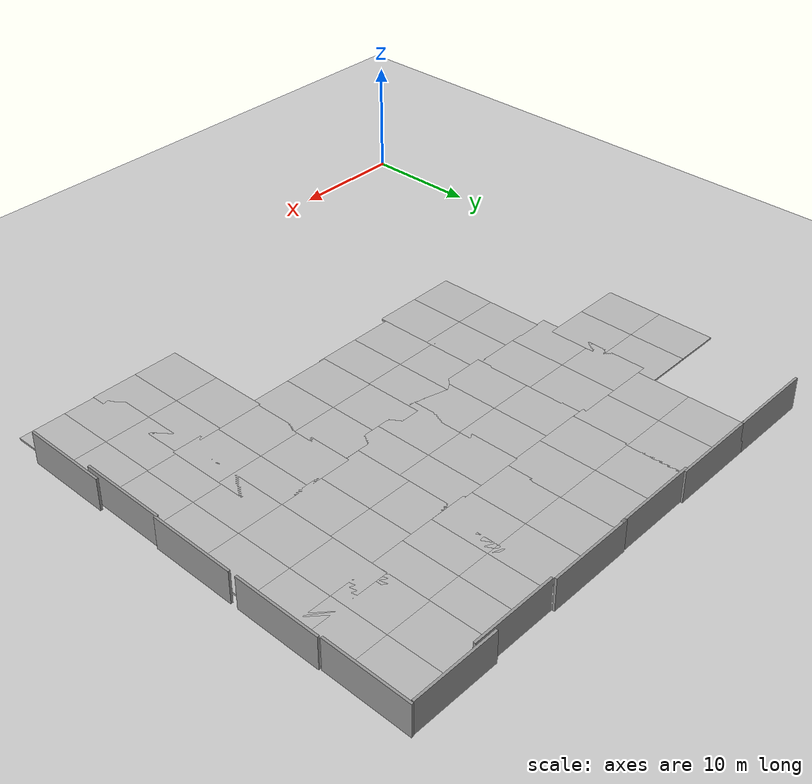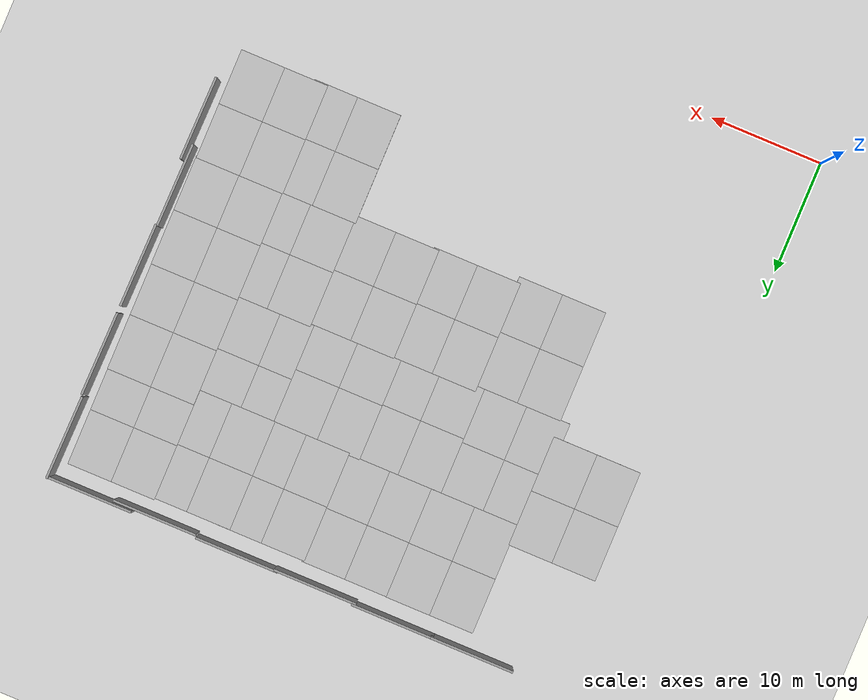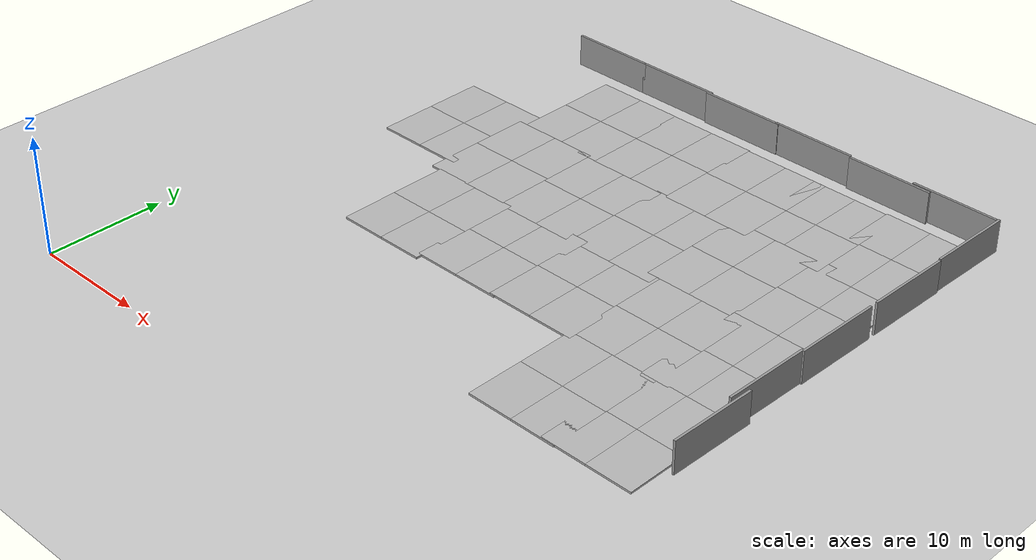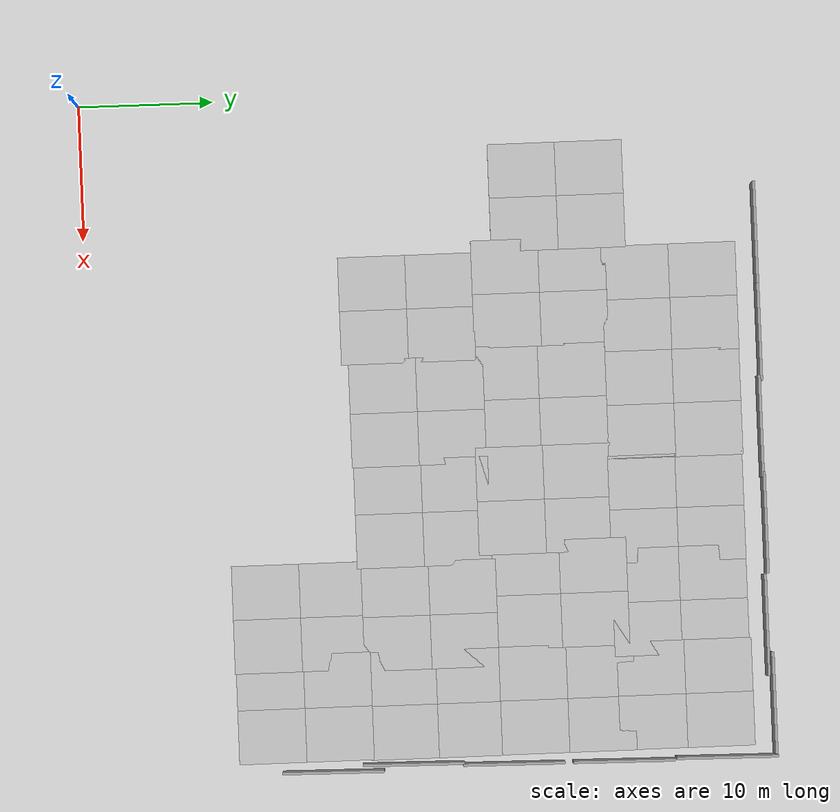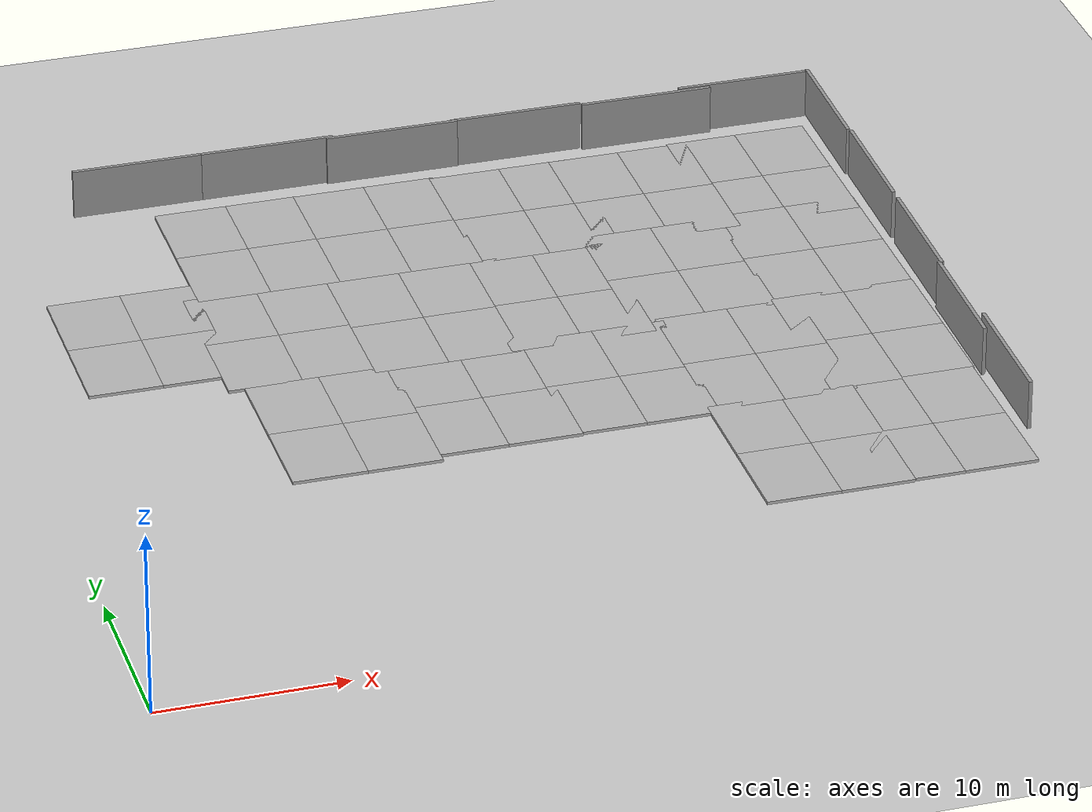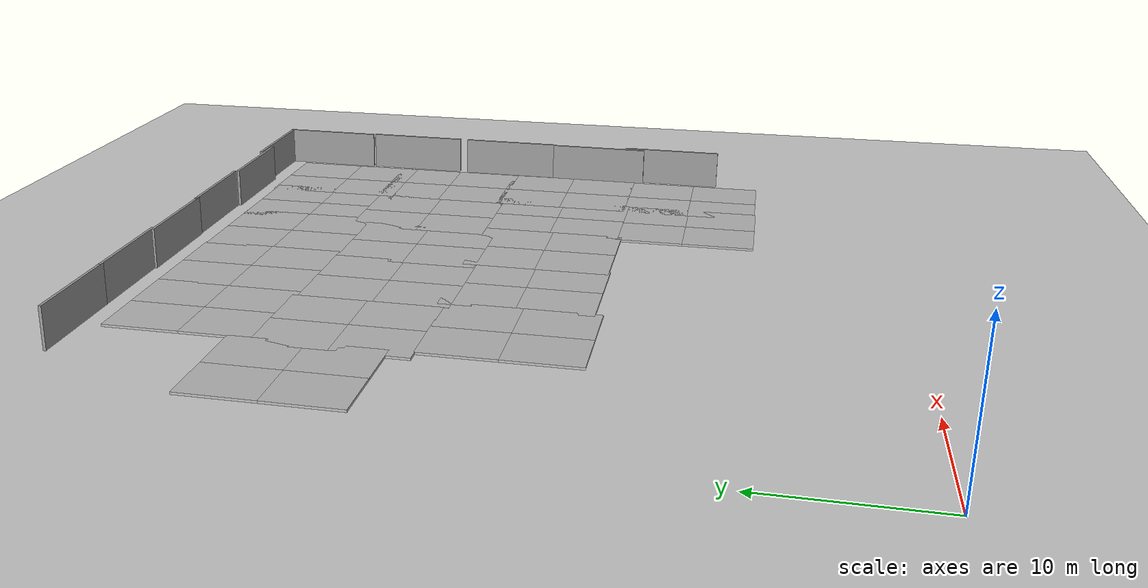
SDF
<sdf version="1.6">
 <world name="default">
  <model name="mud_box_clone_7">
   <static>1</static>
   <link name="link">
    <collision name="collision"><geometry><box><size>8 10 0.2</size></box></geometry></collision>
    <visual name="visual_1">
     <pose>-2 2.5 0 0 -0 0</pose>
     <cast_shadows>0</cast_shadows>
     <geometry><box><size>4 5 0.2</size></box></geometry>
     <material>
      <script>
       <uri>model://mud_box/materials/scripts</uri>
       <uri>model://mud_box/materials/textures</uri>
       <name>vrc/mud</name>
      </script>
     </material>
    </visual>
    <visual name="visual_2">
     <pose>2 2.5 0 0 -0 0</pose>
     <cast_shadows>0</cast_shadows>
     <geometry><box><size>4 5 0.2</size></box></geometry>
     <material>
      <script>
       <uri>model://mud_box/materials/scripts</uri>
       <uri>model://mud_box/materials/textures</uri>
       <name>vrc/mud</name>
      </script>
     </material>
    </visual>
    <visual name="visual_3">
     <pose>2 -2.5 0 0 -0 0</pose>
     <cast_shadows>0</cast_shadows>
     <geometry><box><size>4 5 0.2</size></box></geometry>
     <material>
      <script>
       <uri>model://mud_box/materials/scripts</uri>
       <uri>model://mud_box/materials/textures</uri>
       <name>vrc/mud</name>
      </script>
     </material>
    </visual>
    <visual name="visual_4">
     <pose>-2 -2.5 0 0 -0 0</pose>
     <cast_shadows>0</cast_shadows>
     <geometry><box><size>4 5 0.2</size></box></geometry>
     <material>
      <script>
       <uri>model://mud_box/materials/scripts</uri>
       <uri>model://mud_box/materials/textures</uri>
       <name>vrc/mud</name>
      </script>
     </material>
    </visual>
   </link>
   <pose>45.2942 15.1476 0 0 -0 0</pose>
  </model>
  <model name="mud_box_clone_8">
   <static>1</static>
   <link name="link">
    <collision name="collision"><geometry><box><size>8 10 0.2</size></box></geometry></collision>
    <visual name="visual_1">
     <pose>-2 2.5 0 0 -0 0</pose>
     <cast_shadows>0</cast_shadows>
     <geometry><box><size>4 5 0.2</size></box></geometry>
     <material>
      <script>
       <uri>model://mud_box/materials/scripts</uri>
       <uri>model://mud_box/materials/textures</uri>
       <name>vrc/mud</name>
      </script>
     </material>
    </visual>
    <visual name="visual_2">
     <pose>2 2.5 0 0 -0 0</pose>
     <cast_shadows>0</cast_shadows>
     <geometry><box><size>4 5 0.2</size></box></geometry>
     <material>
      <script>
       <uri>model://mud_box/materials/scripts</uri>
       <uri>model://mud_box/materials/textures</uri>
       <name>vrc/mud</name>
      </script>
     </material>
    </visual>
    <visual name="visual_3">
     <pose>2 -2.5 0 0 -0 0</pose>
     <cast_shadows>0</cast_shadows>
     <geometry><box><size>4 5 0.2</size></box></geometry>
     <material>
      <script>
       <uri>model://mud_box/materials/scripts</uri>
       <uri>model://mud_box/materials/textures</uri>
       <name>vrc/mud</name>
      </script>
     </material>
    </visual>
    <visual name="visual_4">
     <pose>-2 -2.5 0 0 -0 0</pose>
     <cast_shadows>0</cast_shadows>
     <geometry><box><size>4 5 0.2</size></box></geometry>
     <material>
      <script>
       <uri>model://mud_box/materials/scripts</uri>
       <uri>model://mud_box/materials/textures</uri>
       <name>vrc/mud</name>
      </script>
     </material>
    </visual>
   </link>
   <pose>38.5803 15.0753 0 0 -0 0</pose>
  </model>
  <model name="mud_box_clone_13">
   <static>1</static>
   <link name="link">
    <collision name="collision"><geometry><box><size>8 10 0.2</size></box></geometry></collision>
    <visual name="visual_1">
     <pose>-2 2.5 0 0 -0 0</pose>
     <cast_shadows>0</cast_shadows>
     <geometry><box><size>4 5 0.2</size></box></geometry>
     <material>
      <script>
       <uri>model://mud_box/materials/scripts</uri>
       <uri>model://mud_box/materials/textures</uri>
       <name>vrc/mud</name>
      </script>
     </material>
    </visual>
    <visual name="visual_2">
     <pose>2 2.5 0 0 -0 0</pose>
     <cast_shadows>0</cast_shadows>
     <geometry><box><size>4 5 0.2</size></box></geometry>
     <material>
      <script>
       <uri>model://mud_box/materials/scripts</uri>
       <uri>model://mud_box/materials/textures</uri>
       <name>vrc/mud</name>
      </script>
     </material>
    </visual>
    <visual name="visual_3">
     <pose>2 -2.5 0 0 -0 0</pose>
     <cast_shadows>0</cast_shadows>
     <geometry><box><size>4 5 0.2</size></box></geometry>
     <material>
      <script>
       <uri>model://mud_box/materials/scripts</uri>
       <uri>model://mud_box/materials/textures</uri>
       <name>vrc/mud</name>
      </script>
     </material>
    </visual>
    <visual name="visual_4">
     <pose>-2 -2.5 0 0 -0 0</pose>
     <cast_shadows>0</cast_shadows>
     <geometry><box><size>4 5 0.2</size></box></geometry>
     <material>
      <script>
       <uri>model://mud_box/materials/scripts</uri>
       <uri>model://mud_box/materials/textures</uri>
       <name>vrc/mud</name>
      </script>
     </material>
    </visual>
   </link>
   <pose>45.3466 24.9799 0 0 -0 0</pose>
  </model>
  <model name="mud_box_clone_14">
   <static>1</static>
   <link name="link">
    <collision name="collision"><geometry><box><size>8 10 0.2</size></box></geometry></collision>
    <visual name="visual_1">
     <pose>-2 2.5 0 0 -0 0</pose>
     <cast_shadows>0</cast_shadows>
     <geometry><box><size>4 5 0.2</size></box></geometry>
     <material>
      <script>
       <uri>model://mud_box/materials/scripts</uri>
       <uri>model://mud_box/materials/textures</uri>
       <name>vrc/mud</name>
      </script>
     </material>
    </visual>
    <visual name="visual_2">
     <pose>2 2.5 0 0 -0 0</pose>
     <cast_shadows>0</cast_shadows>
     <geometry><box><size>4 5 0.2</size></box></geometry>
     <material>
      <script>
       <uri>model://mud_box/materials/scripts</uri>
       <uri>model://mud_box/materials/textures</uri>
       <name>vrc/mud</name>
      </script>
     </material>
    </visual>
    <visual name="visual_3">
     <pose>2 -2.5 0 0 -0 0</pose>
     <cast_shadows>0</cast_shadows>
     <geometry><box><size>4 5 0.2</size></box></geometry>
     <material>
      <script>
       <uri>model://mud_box/materials/scripts</uri>
       <uri>model://mud_box/materials/textures</uri>
       <name>vrc/mud</name>
      </script>
     </material>
    </visual>
    <visual name="visual_4">
     <pose>-2 -2.5 0 0 -0 0</pose>
     <cast_shadows>0</cast_shadows>
     <geometry><box><size>4 5 0.2</size></box></geometry>
     <material>
      <script>
       <uri>model://mud_box/materials/scripts</uri>
       <uri>model://mud_box/materials/textures</uri>
       <name>vrc/mud</name>
      </script>
     </material>
    </visual>
   </link>
   <pose>38.7408 24.6872 0 0 -0 0</pose>
  </model>
  <model name="mud_box_clone_15">
   <static>1</static>
   <link name="link">
    <collision name="collision"><geometry><box><size>8 10 0.2</size></box></geometry></collision>
    <visual name="visual_1">
     <pose>-2 2.5 0 0 -0 0</pose>
     <cast_shadows>0</cast_shadows>
     <geometry><box><size>4 5 0.2</size></box></geometry>
     <material>
      <script>
       <uri>model://mud_box/materials/scripts</uri>
       <uri>model://mud_box/materials/textures</uri>
       <name>vrc/mud</name>
      </script>
     </material>
    </visual>
    <visual name="visual_2">
     <pose>2 2.5 0 0 -0 0</pose>
     <cast_shadows>0</cast_shadows>
     <geometry><box><size>4 5 0.2</size></box></geometry>
     <material>
      <script>
       <uri>model://mud_box/materials/scripts</uri>
       <uri>model://mud_box/materials/textures</uri>
       <name>vrc/mud</name>
      </script>
     </material>
    </visual>
    <visual name="visual_3">
     <pose>2 -2.5 0 0 -0 0</pose>
     <cast_shadows>0</cast_shadows>
     <geometry><box><size>4 5 0.2</size></box></geometry>
     <material>
      <script>
       <uri>model://mud_box/materials/scripts</uri>
       <uri>model://mud_box/materials/textures</uri>
       <name>vrc/mud</name>
      </script>
     </material>
    </visual>
    <visual name="visual_4">
     <pose>-2 -2.5 0 0 -0 0</pose>
     <cast_shadows>0</cast_shadows>
     <geometry><box><size>4 5 0.2</size></box></geometry>
     <material>
      <script>
       <uri>model://mud_box/materials/scripts</uri>
       <uri>model://mud_box/materials/textures</uri>
       <name>vrc/mud</name>
      </script>
     </material>
    </visual>
   </link>
   <pose>31.1182 24.4231 0 0 -0 0</pose>
  </model>
  <model name="mud_box_clone_16">
   <static>1</static>
   <link name="link">
    <collision name="collision"><geometry><box><size>8 10 0.2</size></box></geometry></collision>
    <visual name="visual_1">
     <pose>-2 2.5 0 0 -0 0</pose>
     <cast_shadows>0</cast_shadows>
     <geometry><box><size>4 5 0.2</size></box></geometry>
     <material>
      <script>
       <uri>model://mud_box/materials/scripts</uri>
       <uri>model://mud_box/materials/textures</uri>
       <name>vrc/mud</name>
      </script>
     </material>
    </visual>
    <visual name="visual_2">
     <pose>2 2.5 0 0 -0 0</pose>
     <cast_shadows>0</cast_shadows>
     <geometry><box><size>4 5 0.2</size></box></geometry>
     <material>
      <script>
       <uri>model://mud_box/materials/scripts</uri>
       <uri>model://mud_box/materials/textures</uri>
       <name>vrc/mud</name>
      </script>
     </material>
    </visual>
    <visual name="visual_3">
     <pose>2 -2.5 0 0 -0 0</pose>
     <cast_shadows>0</cast_shadows>
     <geometry><box><size>4 5 0.2</size></box></geometry>
     <material>
      <script>
       <uri>model://mud_box/materials/scripts</uri>
       <uri>model://mud_box/materials/textures</uri>
       <name>vrc/mud</name>
      </script>
     </material>
    </visual>
    <visual name="visual_4">
     <pose>-2 -2.5 0 0 -0 0</pose>
     <cast_shadows>0</cast_shadows>
     <geometry><box><size>4 5 0.2</size></box></geometry>
     <material>
      <script>
       <uri>model://mud_box/materials/scripts</uri>
       <uri>model://mud_box/materials/textures</uri>
       <name>vrc/mud</name>
      </script>
     </material>
    </visual>
   </link>
   <pose>23.6135 24.3316 0 0 -0 0</pose>
  </model>
  <model name="mud_box_clone_17">
   <static>1</static>
   <link name="link">
    <collision name="collision"><geometry><box><size>8 10 0.2</size></box></geometry></collision>
    <visual name="visual_1">
     <pose>-2 2.5 0 0 -0 0</pose>
     <cast_shadows>0</cast_shadows>
     <geometry><box><size>4 5 0.2</size></box></geometry>
     <material>
      <script>
       <uri>model://mud_box/materials/scripts</uri>
       <uri>model://mud_box/materials/textures</uri>
       <name>vrc/mud</name>
      </script>
     </material>
    </visual>
    <visual name="visual_2">
     <pose>2 2.5 0 0 -0 0</pose>
     <cast_shadows>0</cast_shadows>
     <geometry><box><size>4 5 0.2</size></box></geometry>
     <material>
      <script>
       <uri>model://mud_box/materials/scripts</uri>
       <uri>model://mud_box/materials/textures</uri>
       <name>vrc/mud</name>
      </script>
     </material>
    </visual>
    <visual name="visual_3">
     <pose>2 -2.5 0 0 -0 0</pose>
     <cast_shadows>0</cast_shadows>
     <geometry><box><size>4 5 0.2</size></box></geometry>
     <material>
      <script>
       <uri>model://mud_box/materials/scripts</uri>
       <uri>model://mud_box/materials/textures</uri>
       <name>vrc/mud</name>
      </script>
     </material>
    </visual>
    <visual name="visual_4">
     <pose>-2 -2.5 0 0 -0 0</pose>
     <cast_shadows>0</cast_shadows>
     <geometry><box><size>4 5 0.2</size></box></geometry>
     <material>
      <script>
       <uri>model://mud_box/materials/scripts</uri>
       <uri>model://mud_box/materials/textures</uri>
       <name>vrc/mud</name>
      </script>
     </material>
    </visual>
   </link>
   <pose>15.9497 23.8267 0 0 -0 0</pose>
  </model>
  <model name="mud_box_clone_18">
   <static>1</static>
   <link name="link">
    <collision name="collision"><geometry><box><size>8 10 0.2</size></box></geometry></collision>
    <visual name="visual_1">
     <pose>-2 2.5 0 0 -0 0</pose>
     <cast_shadows>0</cast_shadows>
     <geometry><box><size>4 5 0.2</size></box></geometry>
     <material>
      <script>
       <uri>model://mud_box/materials/scripts</uri>
       <uri>model://mud_box/materials/textures</uri>
       <name>vrc/mud</name>
      </script>
     </material>
    </visual>
    <visual name="visual_2">
     <pose>2 2.5 0 0 -0 0</pose>
     <cast_shadows>0</cast_shadows>
     <geometry><box><size>4 5 0.2</size></box></geometry>
     <material>
      <script>
       <uri>model://mud_box/materials/scripts</uri>
       <uri>model://mud_box/materials/textures</uri>
       <name>vrc/mud</name>
      </script>
     </material>
    </visual>
    <visual name="visual_3">
     <pose>2 -2.5 0 0 -0 0</pose>
     <cast_shadows>0</cast_shadows>
     <geometry><box><size>4 5 0.2</size></box></geometry>
     <material>
      <script>
       <uri>model://mud_box/materials/scripts</uri>
       <uri>model://mud_box/materials/textures</uri>
       <name>vrc/mud</name>
      </script>
     </material>
    </visual>
    <visual name="visual_4">
     <pose>-2 -2.5 0 0 -0 0</pose>
     <cast_shadows>0</cast_shadows>
     <geometry><box><size>4 5 0.2</size></box></geometry>
     <material>
      <script>
       <uri>model://mud_box/materials/scripts</uri>
       <uri>model://mud_box/materials/textures</uri>
       <name>vrc/mud</name>
      </script>
     </material>
    </visual>
   </link>
   <pose>45.3234 34.6666 0 0 -0 0</pose>
  </model>
  <model name="mud_box_clone_19">
   <static>1</static>
   <link name="link">
    <collision name="collision"><geometry><box><size>8 10 0.2</size></box></geometry></collision>
    <visual name="visual_1">
     <pose>-2 2.5 0 0 -0 0</pose>
     <cast_shadows>0</cast_shadows>
     <geometry><box><size>4 5 0.2</size></box></geometry>
     <material>
      <script>
       <uri>model://mud_box/materials/scripts</uri>
       <uri>model://mud_box/materials/textures</uri>
       <name>vrc/mud</name>
      </script>
     </material>
    </visual>
    <visual name="visual_2">
     <pose>2 2.5 0 0 -0 0</pose>
     <cast_shadows>0</cast_shadows>
     <geometry><box><size>4 5 0.2</size></box></geometry>
     <material>
      <script>
       <uri>model://mud_box/materials/scripts</uri>
       <uri>model://mud_box/materials/textures</uri>
       <name>vrc/mud</name>
      </script>
     </material>
    </visual>
    <visual name="visual_3">
     <pose>2 -2.5 0 0 -0 0</pose>
     <cast_shadows>0</cast_shadows>
     <geometry><box><size>4 5 0.2</size></box></geometry>
     <material>
      <script>
       <uri>model://mud_box/materials/scripts</uri>
       <uri>model://mud_box/materials/textures</uri>
       <name>vrc/mud</name>
      </script>
     </material>
    </visual>
    <visual name="visual_4">
     <pose>-2 -2.5 0 0 -0 0</pose>
     <cast_shadows>0</cast_shadows>
     <geometry><box><size>4 5 0.2</size></box></geometry>
     <material>
      <script>
       <uri>model://mud_box/materials/scripts</uri>
       <uri>model://mud_box/materials/textures</uri>
       <name>vrc/mud</name>
      </script>
     </material>
    </visual>
   </link>
   <pose>45.3013 43.4356 0 0 -0 0</pose>
  </model>
  <model name="mud_box_clone_20">
   <static>1</static>
   <link name="link">
    <collision name="collision"><geometry><box><size>8 10 0.2</size></box></geometry></collision>
    <visual name="visual_1">
     <pose>-2 2.5 0 0 -0 0</pose>
     <cast_shadows>0</cast_shadows>
     <geometry><box><size>4 5 0.2</size></box></geometry>
     <material>
      <script>
       <uri>model://mud_box/materials/scripts</uri>
       <uri>model://mud_box/materials/textures</uri>
       <name>vrc/mud</name>
      </script>
     </material>
    </visual>
    <visual name="visual_2">
     <pose>2 2.5 0 0 -0 0</pose>
     <cast_shadows>0</cast_shadows>
     <geometry><box><size>4 5 0.2</size></box></geometry>
     <material>
      <script>
       <uri>model://mud_box/materials/scripts</uri>
       <uri>model://mud_box/materials/textures</uri>
       <name>vrc/mud</name>
      </script>
     </material>
    </visual>
    <visual name="visual_3">
     <pose>2 -2.5 0 0 -0 0</pose>
     <cast_shadows>0</cast_shadows>
     <geometry><box><size>4 5 0.2</size></box></geometry>
     <material>
      <script>
       <uri>model://mud_box/materials/scripts</uri>
       <uri>model://mud_box/materials/textures</uri>
       <name>vrc/mud</name>
      </script>
     </material>
    </visual>
    <visual name="visual_4">
     <pose>-2 -2.5 0 0 -0 0</pose>
     <cast_shadows>0</cast_shadows>
     <geometry><box><size>4 5 0.2</size></box></geometry>
     <material>
      <script>
       <uri>model://mud_box/materials/scripts</uri>
       <uri>model://mud_box/materials/textures</uri>
       <name>vrc/mud</name>
      </script>
     </material>
    </visual>
   </link>
   <pose>38.3671 43.3008 0 0 -0 0</pose>
  </model>
  <model name="mud_box_clone_21">
   <static>1</static>
   <link name="link">
    <collision name="collision"><geometry><box><size>8 10 0.2</size></box></geometry></collision>
    <visual name="visual_1">
     <pose>-2 2.5 0 0 -0 0</pose>
     <cast_shadows>0</cast_shadows>
     <geometry><box><size>4 5 0.2</size></box></geometry>
     <material>
      <script>
       <uri>model://mud_box/materials/scripts</uri>
       <uri>model://mud_box/materials/textures</uri>
       <name>vrc/mud</name>
      </script>
     </material>
    </visual>
    <visual name="visual_2">
     <pose>2 2.5 0 0 -0 0</pose>
     <cast_shadows>0</cast_shadows>
     <geometry><box><size>4 5 0.2</size></box></geometry>
     <material>
      <script>
       <uri>model://mud_box/materials/scripts</uri>
       <uri>model://mud_box/materials/textures</uri>
       <name>vrc/mud</name>
      </script>
     </material>
    </visual>
    <visual name="visual_3">
     <pose>2 -2.5 0 0 -0 0</pose>
     <cast_shadows>0</cast_shadows>
     <geometry><box><size>4 5 0.2</size></box></geometry>
     <material>
      <script>
       <uri>model://mud_box/materials/scripts</uri>
       <uri>model://mud_box/materials/textures</uri>
       <name>vrc/mud</name>
      </script>
     </material>
    </visual>
    <visual name="visual_4">
     <pose>-2 -2.5 0 0 -0 0</pose>
     <cast_shadows>0</cast_shadows>
     <geometry><box><size>4 5 0.2</size></box></geometry>
     <material>
      <script>
       <uri>model://mud_box/materials/scripts</uri>
       <uri>model://mud_box/materials/textures</uri>
       <name>vrc/mud</name>
      </script>
     </material>
    </visual>
   </link>
   <pose>31.4757 43.3123 0 0 -0 0</pose>
  </model>
  <model name="mud_box_clone_22">
   <static>1</static>
   <link name="link">
    <collision name="collision"><geometry><box><size>8 10 0.2</size></box></geometry></collision>
    <visual name="visual_1">
     <pose>-2 2.5 0 0 -0 0</pose>
     <cast_shadows>0</cast_shadows>
     <geometry><box><size>4 5 0.2</size></box></geometry>
     <material>
      <script>
       <uri>model://mud_box/materials/scripts</uri>
       <uri>model://mud_box/materials/textures</uri>
       <name>vrc/mud</name>
      </script>
     </material>
    </visual>
    <visual name="visual_2">
     <pose>2 2.5 0 0 -0 0</pose>
     <cast_shadows>0</cast_shadows>
     <geometry><box><size>4 5 0.2</size></box></geometry>
     <material>
      <script>
       <uri>model://mud_box/materials/scripts</uri>
       <uri>model://mud_box/materials/textures</uri>
       <name>vrc/mud</name>
      </script>
     </material>
    </visual>
    <visual name="visual_3">
     <pose>2 -2.5 0 0 -0 0</pose>
     <cast_shadows>0</cast_shadows>
     <geometry><box><size>4 5 0.2</size></box></geometry>
     <material>
      <script>
       <uri>model://mud_box/materials/scripts</uri>
       <uri>model://mud_box/materials/textures</uri>
       <name>vrc/mud</name>
      </script>
     </material>
    </visual>
    <visual name="visual_4">
     <pose>-2 -2.5 0 0 -0 0</pose>
     <cast_shadows>0</cast_shadows>
     <geometry><box><size>4 5 0.2</size></box></geometry>
     <material>
      <script>
       <uri>model://mud_box/materials/scripts</uri>
       <uri>model://mud_box/materials/textures</uri>
       <name>vrc/mud</name>
      </script>
     </material>
    </visual>
   </link>
   <pose>30.4757 33.5146 0 0 -0 0</pose>
  </model>
  <model name="mud_box_clone_23">
   <static>1</static>
   <link name="link">
    <collision name="collision"><geometry><box><size>8 10 0.2</size></box></geometry></collision>
    <visual name="visual_1">
     <pose>-2 2.5 0 0 -0 0</pose>
     <cast_shadows>0</cast_shadows>
     <geometry><box><size>4 5 0.2</size></box></geometry>
     <material>
      <script>
       <uri>model://mud_box/materials/scripts</uri>
       <uri>model://mud_box/materials/textures</uri>
       <name>vrc/mud</name>
      </script>
     </material>
    </visual>
    <visual name="visual_2">
     <pose>2 2.5 0 0 -0 0</pose>
     <cast_shadows>0</cast_shadows>
     <geometry><box><size>4 5 0.2</size></box></geometry>
     <material>
      <script>
       <uri>model://mud_box/materials/scripts</uri>
       <uri>model://mud_box/materials/textures</uri>
       <name>vrc/mud</name>
      </script>
     </material>
    </visual>
    <visual name="visual_3">
     <pose>2 -2.5 0 0 -0 0</pose>
     <cast_shadows>0</cast_shadows>
     <geometry><box><size>4 5 0.2</size></box></geometry>
     <material>
      <script>
       <uri>model://mud_box/materials/scripts</uri>
       <uri>model://mud_box/materials/textures</uri>
       <name>vrc/mud</name>
      </script>
     </material>
    </visual>
    <visual name="visual_4">
     <pose>-2 -2.5 0 0 -0 0</pose>
     <cast_shadows>0</cast_shadows>
     <geometry><box><size>4 5 0.2</size></box></geometry>
     <material>
      <script>
       <uri>model://mud_box/materials/scripts</uri>
       <uri>model://mud_box/materials/textures</uri>
       <name>vrc/mud</name>
      </script>
     </material>
    </visual>
   </link>
   <pose>22.9677 33.4226 0 0 -0 0</pose>
  </model>
  <model name="ground_plane">
   <static>1</static>
   <link name="link">
    <collision name="collision">
     <geometry><plane><normal>0 0 1</normal><size>100 100</size></plane></geometry>
     <surface><friction><ode><mu>100</mu><mu2>50</mu2></ode></friction></surface>
    </collision>
    <visual name="visual">
     <cast_shadows>0</cast_shadows>
     <geometry><plane><normal>0 0 1</normal><size>100 100</size></plane></geometry>
     <material>
      <script><uri>file://media/materials/scripts/gazebo.material</uri><name>Gazebo/Grey</name></script>
     </material>
    </visual>
   </link>
  </model>
  <model name="grey_wall_clone_6">
   <static>1</static>
   <link name="link">
    <pose>0 0 1.4 0 -0 0</pose>
    <collision name="collision"><geometry><box><size>7.5 0.2 2.8</size></box></geometry></collision>
    <visual name="visual">
     <cast_shadows>0</cast_shadows>
     <geometry><box><size>7.5 0.2 2.8</size></box></geometry>
     <material>
      <script>
       <uri>model://grey_wall/materials/scripts</uri>
       <uri>model://grey_wall/materials/textures</uri>
       <name>vrc/grey_wall</name>
      </script>
     </material>
    </visual>
   </link>
   <pose>11.3946 49.801 0 0 -0 0</pose>
  </model>
  <model name="grey_wall_clone_7">
   <static>1</static>
   <link name="link">
    <pose>0 0 1.4 0 -0 0</pose>
    <collision name="collision"><geometry><box><size>7.5 0.2 2.8</size></box></geometry></collision>
    <visual name="visual">
     <cast_shadows>0</cast_shadows>
     <geometry><box><size>7.5 0.2 2.8</size></box></geometry>
     <material>
      <script>
       <uri>model://grey_wall/materials/scripts</uri>
       <uri>model://grey_wall/materials/textures</uri>
       <name>vrc/grey_wall</name>
      </script>
     </material>
    </visual>
   </link>
   <pose>18.6407 49.801 0 0 -0 0</pose>
  </model>
  <model name="grey_wall_clone_8">
   <static>1</static>
   <link name="link">
    <pose>0 0 1.4 0 -0 0</pose>
    <collision name="collision"><geometry><box><size>7.5 0.2 2.8</size></box></geometry></collision>
    <visual name="visual">
     <cast_shadows>0</cast_shadows>
     <geometry><box><size>7.5 0.2 2.8</size></box></geometry>
     <material>
      <script>
       <uri>model://grey_wall/materials/scripts</uri>
       <uri>model://grey_wall/materials/textures</uri>
       <name>vrc/grey_wall</name>
      </script>
     </material>
    </visual>
   </link>
   <pose>25.7254 49.64 0 0 -0 0</pose>
  </model>
  <model name="grey_wall_clone_9">
   <static>1</static>
   <link name="link">
    <pose>0 0 1.4 0 -0 0</pose>
    <collision name="collision"><geometry><box><size>7.5 0.2 2.8</size></box></geometry></collision>
    <visual name="visual">
     <cast_shadows>0</cast_shadows>
     <geometry><box><size>7.5 0.2 2.8</size></box></geometry>
     <material>
      <script>
       <uri>model://grey_wall/materials/scripts</uri>
       <uri>model://grey_wall/materials/textures</uri>
       <name>vrc/grey_wall</name>
      </script>
     </material>
    </visual>
   </link>
   <pose>32.8552 49.7069 0 0 -0 0</pose>
  </model>
  <model name="grey_wall_clone_10">
   <static>1</static>
   <link name="link">
    <pose>0 0 1.4 0 -0 0</pose>
    <collision name="collision"><geometry><box><size>7.5 0.2 2.8</size></box></geometry></collision>
    <visual name="visual">
     <cast_shadows>0</cast_shadows>
     <geometry><box><size>7.5 0.2 2.8</size></box></geometry>
     <material>
      <script>
       <uri>model://grey_wall/materials/scripts</uri>
       <uri>model://grey_wall/materials/textures</uri>
       <name>vrc/grey_wall</name>
      </script>
     </material>
    </visual>
   </link>
   <pose>40.416 49.49 0 0 -0 0</pose>
  </model>
  <model name="grey_wall_clone_11">
   <static>1</static>
   <link name="link">
    <pose>0 0 1.4 0 -0 0</pose>
    <collision name="collision"><geometry><box><size>7.5 0.2 2.8</size></box></geometry></collision>
    <visual name="visual">
     <cast_shadows>0</cast_shadows>
     <geometry><box><size>7.5 0.2 2.8</size></box></geometry>
     <material>
      <script>
       <uri>model://grey_wall/materials/scripts</uri>
       <uri>model://grey_wall/materials/textures</uri>
       <name>vrc/grey_wall</name>
      </script>
     </material>
    </visual>
   </link>
   <pose>46.1603 49.8154 0 0 -0 0</pose>
  </model>
  <model name="grey_wall_clone_27_clone_13">
   <static>1</static>
   <link name="link">
    <pose>0 0 1.4 0 -0 0</pose>
    <collision name="collision"><geometry><box><size>7.5 0.2 2.8</size></box></geometry></collision>
    <visual name="visual">
     <cast_shadows>0</cast_shadows>
     <geometry><box><size>7.5 0.2 2.8</size></box></geometry>
     <material>
      <script>
       <uri>model://grey_wall/materials/scripts</uri>
       <uri>model://grey_wall/materials/textures</uri>
       <name>vrc/grey_wall</name>
      </script>
     </material>
    </visual>
   </link>
   <pose>50.0041 46.2163 0 0 0 -1.5859</pose>
  </model>
  <model name="grey_wall_clone_27_clone_14">
   <static>1</static>
   <link name="link">
    <pose>0 0 1.4 0 -0 0</pose>
    <collision name="collision"><geometry><box><size>7.5 0.2 2.8</size></box></geometry></collision>
    <visual name="visual">
     <cast_shadows>0</cast_shadows>
     <geometry><box><size>7.5 0.2 2.8</size></box></geometry>
     <material>
      <script>
       <uri>model://grey_wall/materials/scripts</uri>
       <uri>model://grey_wall/materials/textures</uri>
       <name>vrc/grey_wall</name>
      </script>
     </material>
    </visual>
   </link>
   <pose>50.0041 38.5851 0 0 0 -1.5859</pose>
  </model>
  <model name="grey_wall_clone_27_clone_15">
   <static>1</static>
   <link name="link">
    <pose>0 0 1.4 0 -0 0</pose>
    <collision name="collision"><geometry><box><size>7.5 0.2 2.8</size></box></geometry></collision>
    <visual name="visual">
     <cast_shadows>0</cast_shadows>
     <geometry><box><size>7.5 0.2 2.8</size></box></geometry>
     <material>
      <script>
       <uri>model://grey_wall/materials/scripts</uri>
       <uri>model://grey_wall/materials/textures</uri>
       <name>vrc/grey_wall</name>
      </script>
     </material>
    </visual>
   </link>
   <pose>49.8903 30.469 0 0 0 -1.5859</pose>
  </model>
  <model name="grey_wall_clone_27_clone_16">
   <static>1</static>
   <link name="link">
    <pose>0 0 1.4 0 -0 0</pose>
    <collision name="collision"><geometry><box><size>7.5 0.2 2.8</size></box></geometry></collision>
    <visual name="visual">
     <cast_shadows>0</cast_shadows>
     <geometry><box><size>7.5 0.2 2.8</size></box></geometry>
     <material>
      <script>
       <uri>model://grey_wall/materials/scripts</uri>
       <uri>model://grey_wall/materials/textures</uri>
       <name>vrc/grey_wall</name>
      </script>
     </material>
    </visual>
   </link>
   <pose>49.6434 23.078 0 0 0 -1.5859</pose>
  </model>
  <model name="grey_wall_clone_27_clone_17">
   <static>1</static>
   <link name="link">
    <pose>0 0 1.4 0 -0 0</pose>
    <collision name="collision"><geometry><box><size>7.5 0.2 2.8</size></box></geometry></collision>
    <visual name="visual">
     <cast_shadows>0</cast_shadows>
     <geometry><box><size>7.5 0.2 2.8</size></box></geometry>
     <material>
      <script>
       <uri>model://grey_wall/materials/scripts</uri>
       <uri>model://grey_wall/materials/textures</uri>
       <name>vrc/grey_wall</name>
      </script>
     </material>
    </visual>
   </link>
   <pose>50.0049 17.1441 0 0 0 -1.5859</pose>
  </model>
  <model name="mud_box_clone_4_clone_6">
   <static>1</static>
   <link name="link">
    <collision name="collision"><geometry><box><size>8 10 0.2</size></box></geometry></collision>
    <visual name="visual_1">
     <pose>-2 2.5 0 0 -0 0</pose>
     <cast_shadows>0</cast_shadows>
     <geometry><box><size>4 5 0.2</size></box></geometry>
     <material>
      <script>
       <uri>model://mud_box/materials/scripts</uri>
       <uri>model://mud_box/materials/textures</uri>
       <name>vrc/mud</name>
      </script>
     </material>
    </visual>
    <visual name="visual_2">
     <pose>2 2.5 0 0 -0 0</pose>
     <cast_shadows>0</cast_shadows>
     <geometry><box><size>4 5 0.2</size></box></geometry>
     <material>
      <script>
       <uri>model://mud_box/materials/scripts</uri>
       <uri>model://mud_box/materials/textures</uri>
       <name>vrc/mud</name>
      </script>
     </material>
    </visual>
    <visual name="visual_3">
     <pose>2 -2.5 0 0 -0 0</pose>
     <cast_shadows>0</cast_shadows>
     <geometry><box><size>4 5 0.2</size></box></geometry>
     <material>
      <script>
       <uri>model://mud_box/materials/scripts</uri>
       <uri>model://mud_box/materials/textures</uri>
       <name>vrc/mud</name>
      </script>
     </material>
    </visual>
    <visual name="visual_4">
     <pose>-2 -2.5 0 0 -0 0</pose>
     <cast_shadows>0</cast_shadows>
     <geometry><box><size>4 5 0.2</size></box></geometry>
     <material>
      <script>
       <uri>model://mud_box/materials/scripts</uri>
       <uri>model://mud_box/materials/textures</uri>
       <name>vrc/mud</name>
      </script>
     </material>
    </visual>
   </link>
   <pose>7.95017 35.2753 0 0 -0 0</pose>
  </model>
  <model name="mud_box_clone_4_clone_8">
   <static>1</static>
   <link name="link">
    <collision name="collision"><geometry><box><size>8 10 0.2</size></box></geometry></collision>
    <visual name="visual_1">
     <pose>-2 2.5 0 0 -0 0</pose>
     <cast_shadows>0</cast_shadows>
     <geometry><box><size>4 5 0.2</size></box></geometry>
     <material>
      <script>
       <uri>model://mud_box/materials/scripts</uri>
       <uri>model://mud_box/materials/textures</uri>
       <name>vrc/mud</name>
      </script>
     </material>
    </visual>
    <visual name="visual_2">
     <pose>2 2.5 0 0 -0 0</pose>
     <cast_shadows>0</cast_shadows>
     <geometry><box><size>4 5 0.2</size></box></geometry>
     <material>
      <script>
       <uri>model://mud_box/materials/scripts</uri>
       <uri>model://mud_box/materials/textures</uri>
       <name>vrc/mud</name>
      </script>
     </material>
    </visual>
    <visual name="visual_3">
     <pose>2 -2.5 0 0 -0 0</pose>
     <cast_shadows>0</cast_shadows>
     <geometry><box><size>4 5 0.2</size></box></geometry>
     <material>
      <script>
       <uri>model://mud_box/materials/scripts</uri>
       <uri>model://mud_box/materials/textures</uri>
       <name>vrc/mud</name>
      </script>
     </material>
    </visual>
    <visual name="visual_4">
     <pose>-2 -2.5 0 0 -0 0</pose>
     <cast_shadows>0</cast_shadows>
     <geometry><box><size>4 5 0.2</size></box></geometry>
     <material>
      <script>
       <uri>model://mud_box/materials/scripts</uri>
       <uri>model://mud_box/materials/textures</uri>
       <name>vrc/mud</name>
      </script>
     </material>
    </visual>
   </link>
   <pose>15.8586 43.4252 0 0 -0 0</pose>
  </model>
  <model name="mud_box_clone_4_clone_9">
   <static>1</static>
   <link name="link">
    <collision name="collision"><geometry><box><size>8 10 0.2</size></box></geometry></collision>
    <visual name="visual_1">
     <pose>-2 2.5 0 0 -0 0</pose>
     <cast_shadows>0</cast_shadows>
     <geometry><box><size>4 5 0.2</size></box></geometry>
     <material>
      <script>
       <uri>model://mud_box/materials/scripts</uri>
       <uri>model://mud_box/materials/textures</uri>
       <name>vrc/mud</name>
      </script>
     </material>
    </visual>
    <visual name="visual_2">
     <pose>2 2.5 0 0 -0 0</pose>
     <cast_shadows>0</cast_shadows>
     <geometry><box><size>4 5 0.2</size></box></geometry>
     <material>
      <script>
       <uri>model://mud_box/materials/scripts</uri>
       <uri>model://mud_box/materials/textures</uri>
       <name>vrc/mud</name>
      </script>
     </material>
    </visual>
    <visual name="visual_3">
     <pose>2 -2.5 0 0 -0 0</pose>
     <cast_shadows>0</cast_shadows>
     <geometry><box><size>4 5 0.2</size></box></geometry>
     <material>
      <script>
       <uri>model://mud_box/materials/scripts</uri>
       <uri>model://mud_box/materials/textures</uri>
       <name>vrc/mud</name>
      </script>
     </material>
    </visual>
    <visual name="visual_4">
     <pose>-2 -2.5 0 0 -0 0</pose>
     <cast_shadows>0</cast_shadows>
     <geometry><box><size>4 5 0.2</size></box></geometry>
     <material>
      <script>
       <uri>model://mud_box/materials/scripts</uri>
       <uri>model://mud_box/materials/textures</uri>
       <name>vrc/mud</name>
      </script>
     </material>
    </visual>
   </link>
   <pose>23.7086 43.4008 0 0 -0 0</pose>
  </model>
  <model name="mud_box_clone_1_clone_1">
   <static>1</static>
   <link name="link">
    <collision name="collision"><geometry><box><size>8 10 0.2</size></box></geometry></collision>
    <visual name="visual_1">
     <pose>-2 2.5 0 0 -0 0</pose>
     <cast_shadows>0</cast_shadows>
     <geometry><box><size>4 5 0.2</size></box></geometry>
     <material>
      <script>
       <uri>model://mud_box/materials/scripts</uri>
       <uri>model://mud_box/materials/textures</uri>
       <name>vrc/mud</name>
      </script>
     </material>
    </visual>
    <visual name="visual_2">
     <pose>2 2.5 0 0 -0 0</pose>
     <cast_shadows>0</cast_shadows>
     <geometry><box><size>4 5 0.2</size></box></geometry>
     <material>
      <script>
       <uri>model://mud_box/materials/scripts</uri>
       <uri>model://mud_box/materials/textures</uri>
       <name>vrc/mud</name>
      </script>
     </material>
    </visual>
    <visual name="visual_3">
     <pose>2 -2.5 0 0 -0 0</pose>
     <cast_shadows>0</cast_shadows>
     <geometry><box><size>4 5 0.2</size></box></geometry>
     <material>
      <script>
       <uri>model://mud_box/materials/scripts</uri>
       <uri>model://mud_box/materials/textures</uri>
       <name>vrc/mud</name>
      </script>
     </material>
    </visual>
    <visual name="visual_4">
     <pose>-2 -2.5 0 0 -0 0</pose>
     <cast_shadows>0</cast_shadows>
     <geometry><box><size>4 5 0.2</size></box></geometry>
     <material>
      <script>
       <uri>model://mud_box/materials/scripts</uri>
       <uri>model://mud_box/materials/textures</uri>
       <name>vrc/mud</name>
      </script>
     </material>
    </visual>
   </link>
   <pose>15.0827 33.7507 0 0 -0 0</pose>
  </model>
  <model name="mud_box_clone_1_clone_2">
   <static>1</static>
   <link name="link">
    <collision name="collision"><geometry><box><size>8 10 0.2</size></box></geometry></collision>
    <visual name="visual_1">
     <pose>-2 2.5 0 0 -0 0</pose>
     <cast_shadows>0</cast_shadows>
     <geometry><box><size>4 5 0.2</size></box></geometry>
     <material>
      <script>
       <uri>model://mud_box/materials/scripts</uri>
       <uri>model://mud_box/materials/textures</uri>
       <name>vrc/mud</name>
      </script>
     </material>
    </visual>
    <visual name="visual_2">
     <pose>2 2.5 0 0 -0 0</pose>
     <cast_shadows>0</cast_shadows>
     <geometry><box><size>4 5 0.2</size></box></geometry>
     <material>
      <script>
       <uri>model://mud_box/materials/scripts</uri>
       <uri>model://mud_box/materials/textures</uri>
       <name>vrc/mud</name>
      </script>
     </material>
    </visual>
    <visual name="visual_3">
     <pose>2 -2.5 0 0 -0 0</pose>
     <cast_shadows>0</cast_shadows>
     <geometry><box><size>4 5 0.2</size></box></geometry>
     <material>
      <script>
       <uri>model://mud_box/materials/scripts</uri>
       <uri>model://mud_box/materials/textures</uri>
       <name>vrc/mud</name>
      </script>
     </material>
    </visual>
    <visual name="visual_4">
     <pose>-2 -2.5 0 0 -0 0</pose>
     <cast_shadows>0</cast_shadows>
     <geometry><box><size>4 5 0.2</size></box></geometry>
     <material>
      <script>
       <uri>model://mud_box/materials/scripts</uri>
       <uri>model://mud_box/materials/textures</uri>
       <name>vrc/mud</name>
      </script>
     </material>
    </visual>
   </link>
   <pose>37.5265 34.4368 0 0 -0 0</pose>
  </model>
 </world>
</sdf>
